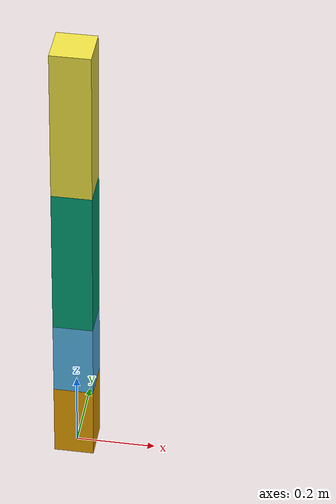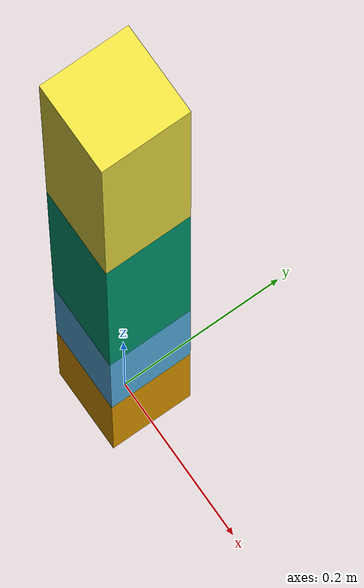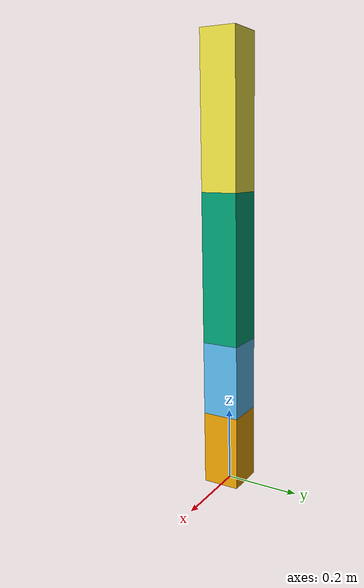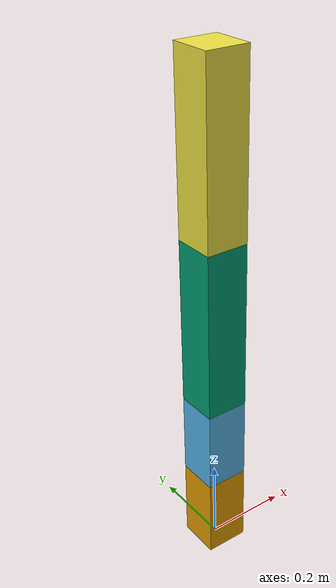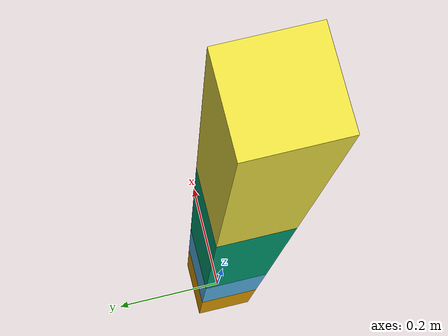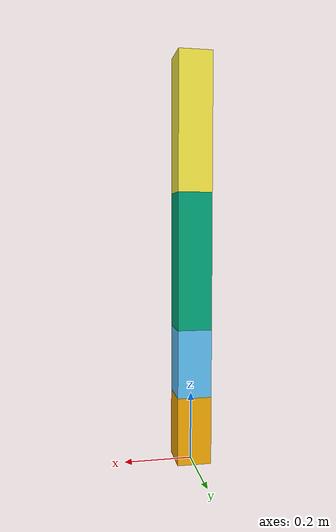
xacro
<robot name="jijin_manipulator" xmlns:xacro="http://www.ros.org/wiki/xacro">

  <xacro:include filename="$(find jijin_manipulator_description)/urdf/manipulator.urdf" />

  #add a link to fix the robot on the ground
  <link name="world"/>
  <joint name="base_joint" type="fixed">
    <parent link="world"/>
    <child  link="base_link"/>
    <origin xyz="0 0 0" rpy="0 0 0" />
  </joint>

  #add firection to links
  <gazebo reference="base_link">
    <selfCollide>false</selfCollide>
    <turnGravityOff>false</turnGravityOff>
    <mu1 value="1.0"/>
    <mu2 value="1.0"/>
    <kp value="10000000.0"/>
    <kd value="1.0"/>
    <fdir1 value="1 0 0"/>
  </gazebo>
  <gazebo reference="link_1">
    <selfCollide>false</selfCollide>
    <turnGravityOff>false</turnGravityOff>
    <mu1 value="1.0"/>
    <mu2 value="1.0"/>
    <kp value="10000000.0"/>
    <kd value="1.0"/>
    <fdir1 value="1 0 0"/>
  </gazebo>
  <gazebo reference="link_2">
    <selfCollide>false</selfCollide>
    <turnGravityOff>false</turnGravityOff>
    <mu1 value="1.0"/>
    <mu2 value="1.0"/>
    <kp value="10000000.0"/>
    <kd value="1.0"/>
    <fdir1 value="1 0 0"/>
  </gazebo>
  <gazebo reference="link_3">
    <selfCollide>false</selfCollide>
    <turnGravityOff>false</turnGravityOff>
    <mu1 value="1.0"/>
    <mu2 value="1.0"/>
    <kp value="10000000.0"/>
    <kd value="1.0"/>
    <fdir1 value="1 0 0"/>
  </gazebo>

  #name controllor (name which joint can be controlled force/velocity/position)
  <transmission name="link_1_trans">
    <type>transmission_interface/SimpleTransmission</type>
    <joint name="link_1_joint">
      <hardwareInterface>hardware_interface/EffortJointInterface</hardwareInterface>
    </joint>
    <actuator name="link_1_motor">
      <hardwareInterface>hardware_interface/EffortJointInterface</hardwareInterface>
      <mechanicalReduction>1</mechanicalReduction>
    </actuator>
  </transmission>
  <transmission name="link_2_trans">
    <type>transmission_interface/SimpleTransmission</type>
    <joint name="link_2_joint">
      <hardwareInterface>hardware_interface/EffortJointInterface</hardwareInterface>
    </joint>
    <actuator name="link_2_motor">
      <hardwareInterface>hardware_interface/EffortJointInterface</hardwareInterface>
      <mechanicalReduction>1</mechanicalReduction>
    </actuator>
  </transmission>
  <transmission name="link_3_trans">
    <type>transmission_interface/SimpleTransmission</type>
    <joint name="link_3_joint">
      <hardwareInterface>hardware_interface/EffortJointInterface</hardwareInterface>
    </joint>
    <actuator name="link_3_motor">
      <hardwareInterface>hardware_interface/EffortJointInterface</hardwareInterface>
      <mechanicalReduction>1</mechanicalReduction>
    </actuator>
  </transmission>

  #add the plugine to active the controllors
  <gazebo>
    <plugin name="gazebo_ros_control" filename="libgazebo_ros_control.so">
      <robotNamespace>/jijin_manipulator</robotNamespace>
      <legacyModeNS>DefaultRobotHWSim</legacyModeNS>
    </plugin>
  </gazebo>

</robot>

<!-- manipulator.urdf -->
<robot name="jijin_manipulator">

  #define a base_link on the ground
  <link name="base_link">
    <visual>
      <geometry>
        <box size="0.1 0.1 0.2"/>
      </geometry>
      <origin xyz="0 0 0.1" rpy="0 0 0"/>
    </visual>
    <collision>
      <geometry>
        <box size="0.1 0.1 0.2"/>
      </geometry>
      <origin xyz="0 0 0.1" rpy="0 0 0"/>
    </collision>
    <inertial>
       <origin xyz="0 0 0.1" rpy="0 0 0"/>
       <mass value="1"/>
       <inertia ixx="1"  ixy="0"  ixz="0" iyy="1" iyz="0" izz="1" />
    </inertial>
  </link>

  #define a link 1 rotate around z
  <link name="link_1">
    <visual>
      <geometry>
        <box size="0.1 0.1 0.2"/>
      </geometry>
      <origin xyz="0 0 0.1" rpy="0 0 0"/>
    </visual>
    <collision>
      <geometry>
        <box size="0.1 0.1 0.2"/>
      </geometry>
      <origin xyz="0 0 0.1" rpy="0 0 0"/>
    </collision>
    <inertial>
       <origin xyz="0 0 0.1" rpy="0 0 0"/>
       <mass value="1"/>
       <inertia ixx="1"  ixy="0"  ixz="0" iyy="1" iyz="0" izz="1" />
    </inertial>
  </link>
  <joint name="link_1_joint" type="continuous">
    <parent link="base_link"/>
    <child  link="link_1"/>
    <origin xyz="0 0 0.2" rpy="0 0 0" />
    <axis xyz="0 0 1"/>
    <limit effort="10000" velocity="0.1"/>
    <joint_properties damping="0.0" friction="0.0"/>
  </joint>

  #define a link 2 rotate around x
  <link name="link_2">
    <visual>
      <geometry>
        <box size="0.1 0.1 0.4"/>
      </geometry>
      <origin xyz="0 0 0.2" rpy="0 0 0"/>
    </visual>
    <collision>
      <geometry>
        <box size="0.1 0.1 0.4"/>
      </geometry>
      <origin xyz="0 0 0.2" rpy="0 0 0"/>
    </collision>
    <inertial>
       <origin xyz="0 0 0.2" rpy="0 0 0"/>
       <mass value="1"/>
       <inertia ixx="1"  ixy="0"  ixz="0" iyy="1" iyz="0" izz="1" />
    </inertial>
  </link>
  <joint name="link_2_joint" type="continuous">
    <parent link="link_1"/>
    <child  link="link_2"/>
    <origin xyz="0 0 0.2" rpy="0 0 0" />
    <axis xyz="1 0 0"/>
    <limit effort="10000" velocity="0.1"/>
    <joint_properties damping="0.0" friction="0.0"/>
  </joint>

  #define a link 3 rotate around x
  <link name="link_3">
    <visual>
      <geometry>
        <box size="0.1 0.1 0.4"/>
      </geometry>
      <origin xyz="0 0 0.2" rpy="0 0 0"/>
    </visual>
    <collision>
      <geometry>
        <box size="0.1 0.1 0.4"/>
      </geometry>
      <origin xyz="0 0 0.2" rpy="0 0 0"/>
    </collision>
    <inertial>
       <origin xyz="0 0 0.2" rpy="0 0 0"/>
       <mass value="1"/>
       <inertia ixx="1"  ixy="0"  ixz="0" iyy="1" iyz="0" izz="1" />
    </inertial>
  </link>
  <joint name="link_3_joint" type="continuous">
    <parent link="link_2"/>
    <child  link="link_3"/>
    <origin xyz="0 0 0.4" rpy="0 0 0" />
    <axis xyz="1 0 0"/>
    <limit effort="10000" velocity="0.1"/>
    <joint_properties damping="0.0" friction="0.0"/>
  </joint>

</robot>
